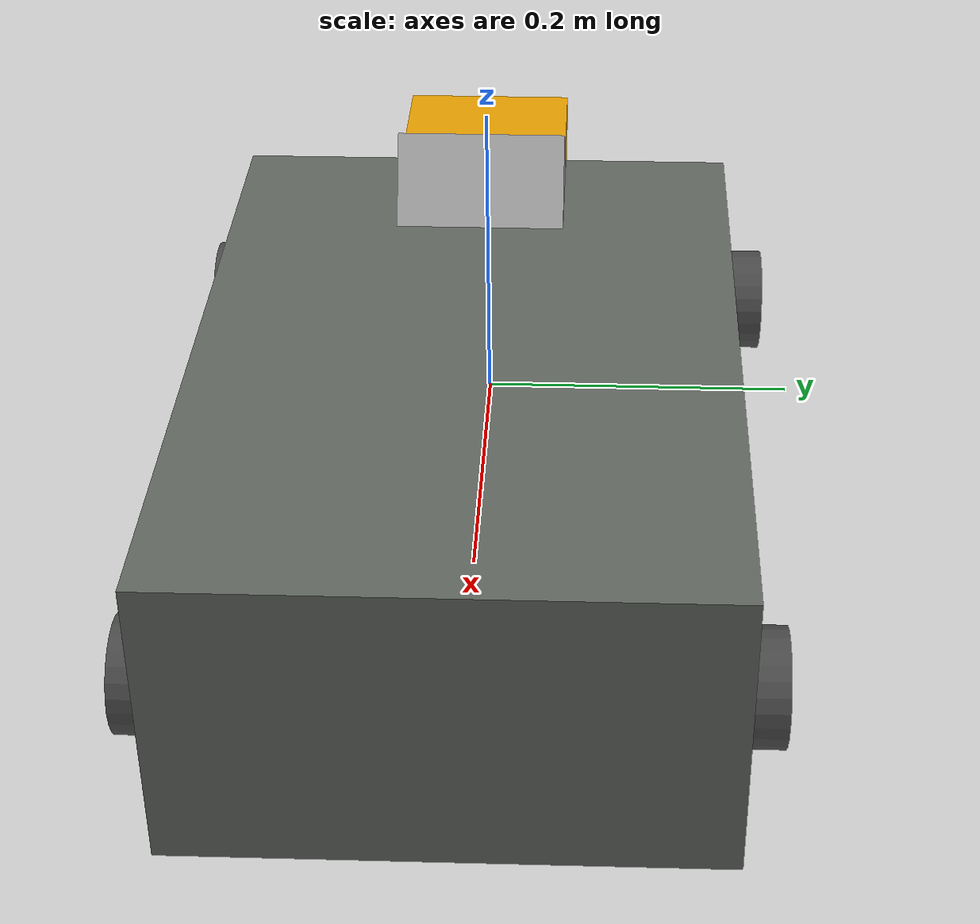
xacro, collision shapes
<?xml version="1.0"?>
<robot name="rover" xmlns:xacro="http://www.ros.org/wiki/xacro">

    <xacro:include filename="$(find rover_description)/urdf/rover_kinematics.xacro"/>
    <xacro:include filename="$(find rover_description)/urdf/sensors.xacro"/>
    <xacro:include filename="$(find rover_description)/urdf/rover.gazebo"/>

</robot>

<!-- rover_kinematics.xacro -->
<robot name="rover" xmlns:xacro="http://www.ros.org/wiki/xacro">

  <xacro:property name="mu1r" value="0.0"/>
  <xacro:property name="mu2r" value="0.0"/>
  <xacro:property name="slipr" value="0.0"/>
  <xacro:property name="mu1f" value="0.0"/>
  <xacro:property name="mu2f" value="0.0"/>
  <xacro:property name="kpr" value="1e9"/>
  <xacro:property name="kdr" value="1000"/>

  <xacro:property name="kpf" value="1e9"/>  <!--f comme front-->
  <xacro:property name="kdf" value="1000"/>

  <xacro:property name="steering_effort" value="1e9"/>

  <xacro:property name="PI" value="3.1415926535897931"/>
  <xacro:property name="chassisMass" value="5"/> <!-- kg -->
  <xacro:property name="chassisLength" value="0.45" />
  <xacro:property name="chassisWidth" value="0.3" />
  <xacro:property name="chassisHeight" value="0.17" />

  <xacro:property name="wheelJointHeight" value="0.07" />
  <xacro:property name="steeringMass" value="0.1"/>

  <xacro:property name="wheelWidth" value="0.05588"/>
  <xacro:property name="wheelRadius" value="0.0635"/>
  <xacro:property name="wheelMass" value="0.1"/>

  <xacro:include filename="$(find rover_description)/urdf/macros.xacro"/>
  <xacro:include filename="$(find rover_description)/urdf/materials.xacro"/>

    <!-- BODY -->
    <link name="base_link">
        <visual name="visual">
          <origin rpy="-1.5708 0 3.1416" xyz="0.19 0.392 0.052"/>
          <geometry>
            <mesh filename="package://rover_description/meshes/ErleRover_chassis.STL" scale="0.0011 0.0011 0.0011"/>
          </geometry>
          <material name="LightBlackish" />
        </visual>

      <collision>
        <origin xyz="${chassisLength/2} 0 ${chassisHeight/2}"/>
        <geometry>
          <box size="${chassisLength} ${chassisWidth} ${chassisHeight}"/>
        </geometry>
      </collision>

      <inertial>
        <origin xyz="${chassisLength/2} 0 0" rpy="0 ${PI/2} 0"/>
        <mass value="${chassisMass}"/>
        <box_inertia m="${chassisMass}" h="${chassisLength/2}" w="${chassisWidth/2}" d="${chassisHeight/2}" />
      </inertial>
    </link>

    <link name="front_left_wheel">
      <inertial>
        <origin rpy="${PI/2} 0 0" xyz="0 0 0"/>
        <mass value="${wheelMass}"/>
        <cylinder_inertia m="${wheelMass}" r="${wheelRadius}" h="${wheelWidth}"/>
      </inertial>
      <collision name="collision">
        <origin rpy="${PI/2} 0 0" xyz="0 0 0"/>
        <geometry>
          <cylinder length="0.05588" radius="${wheelRadius/2}"/>
        </geometry>
      </collision>
      <visual name="tire_visual">
        <origin rpy="${PI/2} 0 0" xyz="-0.24 0.334 0.02"/>
        <geometry>
          <mesh filename="package://rover_description/meshes/ErleRover_wheel4.STL" scale="0.0014 0.0014 0.0014"/>
        </geometry>
        <material name="TireBlack">
            <color rgba="0.29 .29 .29 1.0"/>
        </material>
      </visual>
    </link>

    <link name="front_right_wheel">
      <inertial>
          <mass value="${wheelMass}"/>
          <origin rpy="${-PI/2} 0 0" xyz="0 0 0"/>
          <cylinder_inertia m="${wheelMass}" r="${wheelRadius}" h="${wheelWidth}"/>
      </inertial>
      <collision name="collision">
        <origin rpy="${-PI/2} 0 0" xyz="0 0 0"/>
        <geometry>
          <cylinder length="0.05588" radius="${wheelRadius/2}"/>
        </geometry>
      </collision>
      <visual name="visual">
        <origin rpy="${-PI/2} 0 0" xyz="0.25 -0.334 -0.02"/>
        <geometry>
          <mesh filename="package://rover_description/meshes/ErleRover_wheel2.STL" scale="0.0014 0.0014 0.0014"/>
        </geometry>
        <material name="TireBlack">
            <color rgba="0.29 .29 .29 1.0"/>
        </material>
      </visual>
    </link>

    <link name="rear_left_wheel">
      <inertial>
          <mass value="${wheelMass}"/>
          <origin rpy="0 0 0" xyz="0 0 0"/>
          <cylinder_inertia m="${wheelMass}" r="${wheelRadius}" h="${wheelWidth}"/>
      </inertial>
      <collision name="collision">
        <origin rpy="${PI/2} 0 0" xyz="0 0 0"/>
        <geometry>
          <cylinder length="0.05588" radius="${wheelRadius/2}"/>
        </geometry>
      </collision>
      <visual name="visual">
        <origin rpy="${-PI/2} 0 0" xyz=" 0.25 -0.666 -0.02"/>
        <geometry>
          <mesh filename="package://rover_description/meshes/ErleRover_wheel3.STL" scale="0.0014 0.0014 0.0014"/>
        </geometry>
        <material name="TireBlack">
            <color rgba="0.29 .29 .29 1.0"/>
        </material>
      </visual>
    </link>

    <link name="rear_right_wheel">
      <inertial>
          <mass value="${wheelMass}"/>
          <origin rpy="0 0 0" xyz="0 0 0"/>
          <cylinder_inertia m="${wheelMass}" r="${wheelRadius}" h="${wheelWidth}"/>
      </inertial>
      <collision name="collision">
        <origin rpy="${PI/2} 0 0" xyz="0 0 0"/>
        <geometry>
          <cylinder length="0.05588" radius="${wheelRadius/2}"/>
        </geometry>
      </collision>
      <visual name="visual">
        <origin rpy="${PI/2} 0 0" xyz="0.25 0.666 0.02"/>
        <geometry>
          <mesh filename="package://rover_description/meshes/ErleRover_wheel1.STL" scale="0.0014 0.0014 0.0014"/>
        </geometry>
        <material name="TireBlack">
            <color rgba="0.29 .29 .29 1.0"/>
        </material>
      </visual>
    </link>

    <!-- ********* WHEELS ********* -->
    <!-- LEFT WHEEL -->

    <gazebo reference="base_link">
        <material>Gazebo/LightBlackish</material>
    </gazebo>

    <gazebo reference="base_link">
      <mu1 value="${mu1r}"/>
      <mu2 value="${mu2r}"/>
    </gazebo>

    <gazebo reference="rear_left_wheel">
      <mu1 value="${mu1r}"/>
      <mu2 value="${mu2r}"/>
      <fdir1>1 0 0</fdir1>
      <kp value="${kpr}"/>
      <kd value="${kdr}"/>
      <material>Gazebo/TireBlack</material>
    </gazebo>

    <gazebo reference="rear_right_wheel">
      <mu1 value="${mu1r}"/>
      <mu2 value="${mu2r}"/>
      <fdir1>1 0 0</fdir1>
      <kp value="${kpr}"/>
      <kd value="${kdr}"/>
      <material>Gazebo/TireBlack</material>
    </gazebo>

    <gazebo reference="front_left_wheel">
      <mu1 value="${mu1f}"/>
      <mu2 value="${mu2f}"/>
      <fdir1>1 0 0</fdir1>
      <kp value="${kpf}"/>
      <kd value="${kdf}"/>
      <material>Gazebo/TireBlack</material>
    </gazebo>

    <gazebo reference="front_right_wheel">
      <mu1 value="${mu1f}"/>
      <mu2 value="${mu2f}"/>
      <fdir1>1 0 0</fdir1>
      <kp value="${kpf}"/>
      <kd value="${kdf}"/>
      <material>Gazebo/Orange</material>
    </gazebo>

    <link name="front_right_wheel_steering_block">
      <visual>
          <origin rpy="${PI/2} 0 0" xyz="0 -0.025 0"/>
          <geometry>
            <cylinder length="0.05" radius="0.005"/>
          </geometry>
          <material name="TireBlack"/>
      </visual>
      <inertial>
        <mass value="${steeringMass}"/>
        <origin rpy="${PI/2} 0 0" xyz="0 -0.025 0"/>
        <cylinder_inertia m="${steeringMass}" r="0.05" h="0.005"/>
      </inertial>
      <collision name="collision">
        <origin rpy="${PI/2} 0 0" xyz="0 -0.025 0"/>
        <geometry>
          <cylinder length="0.05" radius="0.005"/>
        </geometry>
      </collision>
    </link>
    <link name="front_left_wheel_steering_block">
      <visual>
        <origin rpy="${PI/2} 0 0" xyz="0 0.025 0"/>
        <geometry>
          <cylinder length="0.05" radius="0.005"/>
        </geometry>
        <material name="TireBlack"/>
      </visual>
      <inertial>
        <mass value="${steeringMass}"/>
        <origin rpy="${PI/2} 0 0" xyz="0 0.025 0"/>
        <cylinder_inertia m="${steeringMass}" r="0.05" h="0.005"/>
      </inertial>
      <collision name="collision">
        <origin rpy="${PI/2} 0 0" xyz="0 0.025 0"/>
        <geometry>
          <cylinder length="0.05" radius="0.005"/>
        </geometry>
      </collision>
    </link>

    <joint name="front_left_steering_joint" type="revolute">
      <parent link="base_link"/>
      <child link="front_left_wheel_steering_block"/>
      <origin rpy="0 0 0" xyz="0.390444 0.1 ${wheelJointHeight}"/>
      <axis xyz="0  0  1"/>
      <limit effort="${steering_effort}" lower="-0.9" upper="0.9" velocity="10.0"/>
    </joint>

    <joint name="front_right_steering_joint" type="revolute">
      <parent link="base_link"/>
      <child link="front_right_wheel_steering_block"/>
      <origin rpy="0 0 0" xyz="0.390444 -0.1 ${wheelJointHeight}"/>
      <axis xyz="0  0  1"/>
      <limit effort="${steering_effort}" lower="-0.9" upper="0.9" velocity="10.0"/>
    </joint>

    <joint name="front_left_wheel_joint" type="continuous">
      <parent link="front_left_wheel_steering_block"/>
      <child link="front_left_wheel"/>
      <origin rpy="0 0 0" xyz="0 0.043124 0"/>
      <axis xyz="0 1 0"/>
      <limit effort="1e7" velocity="1000"/>
    </joint>

    <joint name="front_right_wheel_joint" type="continuous">
      <parent link="front_right_wheel_steering_block"/>
      <child link="front_right_wheel"/>
      <origin rpy="0 0 0" xyz="0.0 -0.043124 0.0"/>
      <axis xyz="0 1 0"/>
      <limit effort="1e7" velocity="1000"/>
    </joint>

    <joint name="rear_left_wheel_joint" type="continuous">
      <parent link="base_link"/>
      <child link="rear_left_wheel"/>
      <origin rpy="0 0 0" xyz="0 0.15 ${wheelJointHeight}"/>
      <axis xyz="0 1 0"/>
      <limit effort="1e7" velocity="1000"/>
    </joint>

    <joint name="rear_right_wheel_joint" type="continuous">
      <parent link="base_link"/>
      <child link="rear_right_wheel"/>
      <origin rpy="0 0 0" xyz="0 -0.15 ${wheelJointHeight}"/>
      <axis xyz="0 1 0"/>
      <limit effort="1e7" velocity="1000"/>
    </joint>

</robot>

<!--TODO: mesurer dimension correct au niveau des positions des joints de braquage de direction-->

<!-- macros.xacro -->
<robot name="rover"  xmlns:xacro="http://www.ros.org/wiki/xacro">
  <xacro:macro name="cylinder_inertia" params="m r h">
    <inertia  ixx="${m*(3*r*r+h*h)/12}" ixy = "0" ixz = "0"
      iyy="${m*(3*r*r+h*h)/12}" iyz = "0"
      izz="${m*r*r/2}"/>
  </xacro:macro>

  <xacro:macro name="box_inertia" params="m w d h">
    <inertia  ixx="${m*(h*h+d*d)/12}" ixy = "0" ixz = "0"
              iyy="${m*(w*w+d*d)/12}" iyz = "0"
              izz="${m*(w*w+h*h)/12}"/>
  </xacro:macro>

  <xacro:macro name="sphere_inertia" params="m r">
    <inertia  ixx="${2*m*r*r/5}" ixy = "0" ixz = "0"
      iyy="${2*m*r*r/5}" iyz = "0"
      izz="${2*m*r*r/5}"
    />
  </xacro:macro>

  <!-- ******* WHEELS ******* -->
  <xacro:macro name="wheel" params="prefix tY tX">

    <link name="${prefix}_wheel_link">
      <collision>
        <origin xyz="0 0 0" rpy="0 ${PI/2} ${PI/2}" />
        <geometry>
          <cylinder length="${wheelWidth}" radius="${wheelRadius}"/>
        </geometry>
      </collision>

      <visual>
        <origin xyz="0 0 0" rpy="0 ${PI/2} ${PI/2}" />
        <geometry>
          <cylinder length="${wheelWidth}" radius="${wheelRadius}"/>
        </geometry>
        <material name="LightGrey" />
      </visual>

      <inertial>
        <origin xyz="0 0 0" rpy="0 ${PI/2} ${PI/2}" />
        <mass value="${wheelMass}"/>
        <cylinder_inertia m="${wheelMass}" r="${wheelRadius}" h="${wheelWidth}"/>
      </inertial>
    </link>

    <joint name="${prefix}_wheel_joint" type="continuous">
      <parent link="base_link"/>
      <child link="${prefix}_wheel_link"/>
      <origin xyz="${tX} ${tY*chassisLength/2} ${wheelRadius}" rpy="0 0 0" />
      <axis xyz="0 1 0" rpy="0 0 0"/>
    </joint>

    <transmission name="${prefix}_wheel_trans" type="SimpleTransmission">
      <type>transmission_interface/SimpleTransmission</type>
      <joint name="${prefix}_wheel_joint">
        <hardwareInterface>hardware_interface/VelocityJointInterface</hardwareInterface>
      </joint>
      <actuator name="${prefix}_wheel_motor">
        <mechanicalReduction>1</mechanicalReduction>
      </actuator>
    </transmission>

    <gazebo reference="${prefix}_wheel_link">
      <kp value="${kp}"/>
      <kd value="${kd}"/>
      <mu1 value="${mu1}"/>
      <mu2 value="${mu2}"/>
      <fdir1 value="0 1 0"/>
      <material>Gazebo/Black</material>
    </gazebo>
  </xacro:macro>

  <!-- ******* CASTER (roue folle) ******* -->

  <xacro:macro name="caster" params="prefix tY tX">

    <link name="${prefix}_caster_link">
      <collision>
        <origin xyz="0 0 0" rpy="0 0 0" />
        <geometry>
          <sphere radius="0.085"/>
        </geometry>
      </collision>

    </link>

    <joint name="${prefix}_caster_joint" type="fixed">
      <parent link="base_link"/>
      <child link="${prefix}_caster_link"/>
      <origin xyz="${tX} ${tY*chassisLength/2} 0.085" rpy="0 0 0" />
    </joint>

    <gazebo reference="${prefix}_caster_link">
      <kp value="${kp}"/>
      <kd value="${kd}"/>
      <mu1 value="0.0"/>
      <mu2 value="0.0"/>
      <fdir1 value="1 0 0"/>
      <material>Gazebo/Black</material>
    </gazebo>
  </xacro:macro>

</robot>

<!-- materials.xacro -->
<robot>

<material name="Blue">
<color rgba="0.0 0.0 0.8 1.0"/>
</material>

<material name="Green">
<color rgba="0.0 0.8 0.0 1.0"/>
</material>

<material name="Grey">
<color rgba="0.6 0.6 0.6 1.0"/>
</material>

<material name="Grey2">
<color rgba="0.75 0.75 0.75 1.0"/>
</material>

<material name="Red">
<color rgba="0.8 0.0 0.0 1.0"/>
</material>

<material name="White">
<color rgba=".9 .9 .9 1.0"/>
</material>

<material name="Black">
<color rgba="0.1 0.1 0.1 1.0"/>
</material>

<material name="LightGrey">
<color rgba="0.6 0.6 0.6 1.0"/>
</material>

<material name="DarkGrey">
<color rgba="0.3 0.3 0.3 1.0"/>
</material>

<material name="LightBlackish">
    <color rgba="0.38 0.405 0.38 1.0"/>
</material>

<material name="TireBlack">
    <color rgba="0.29 .29 .29 1.0"/>
</material>

</robot>

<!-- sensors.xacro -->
<robot xmlns:xacro="http://www.ros.org/wiki/xacro">

  <!-- Camera -->
  <link name="raspicam">
    <collision>
      <origin xyz="0 0 0" rpy="0 0 0"/>
      <geometry>
    <box size="0.1 0.1 0.1"/>
      </geometry>
    </collision>
  </link>

   <joint name="raspicam_to_base_link_joint" type="fixed">
      <parent link="base_link"/>
      <child link="raspicam"/>
      <origin xyz="0.045 0 0.15" rpy="${PI/2-PI/6} 0 ${PI/2}"/>
   </joint>

   <!-- IMU -->
    <link name="imu_link">
      <collision>
        <geometry>
          <box size="0.1 0.1 0.1"/>
        </geometry>
      </collision>

      <inertial>
        <mass value="0.001" />
        <origin xyz="0 0 0" rpy="0 0 0"/>
        <inertia ixx="1e-6" ixy="0" ixz="0" iyy="1e-6" iyz="0" izz="1e-6" />
      </inertial>
    </link>

    <joint name="imu_joint" type="fixed">
        <parent link="base_link"/>
        <child link="imu_link"/>
      <origin xyz="0.01 0 0.145" rpy="${PI/2} 0 0"/>
    </joint>

</robot>
